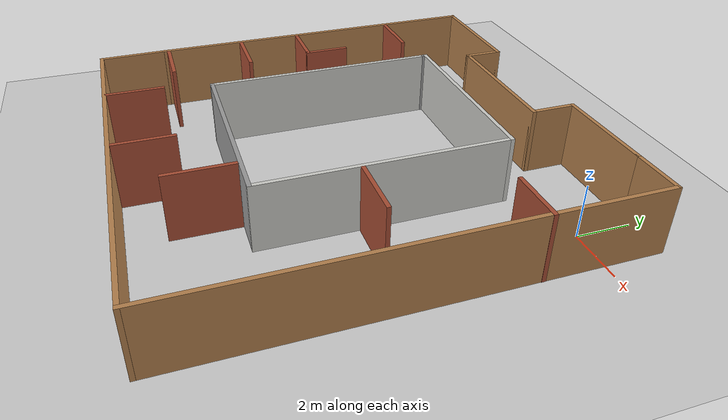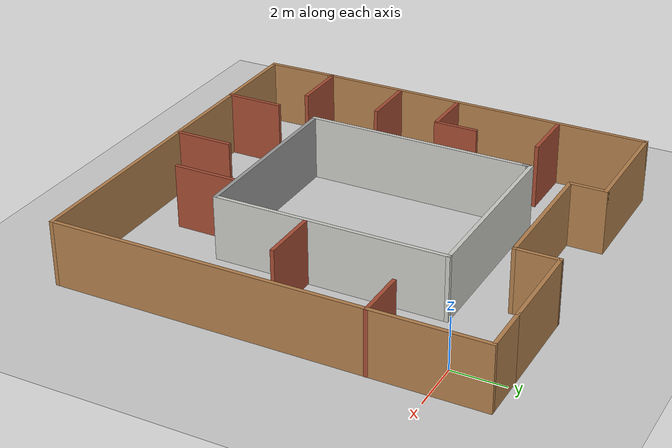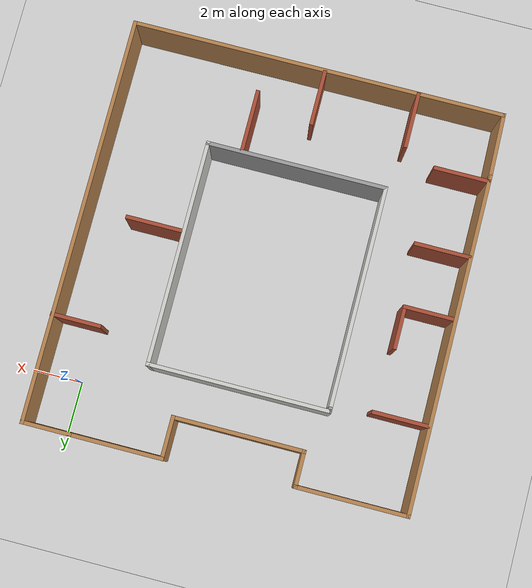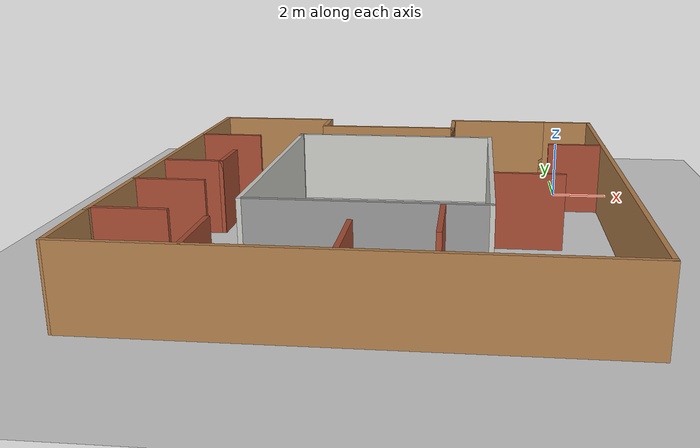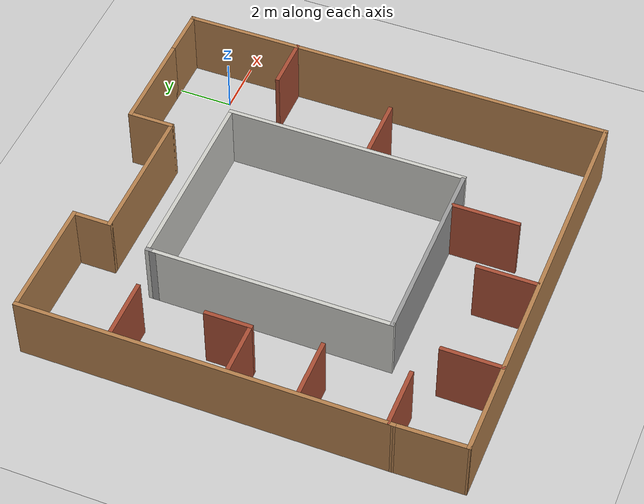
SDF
<sdf version="1.6">
 <world name="default">
  <light name="sun" type="directional">
   <pose>0 0 10 0 -0 0</pose>
   <diffuse>0.8 0.8 0.8 1</diffuse>
   <specular>0.2 0.2 0.2 1</specular>
   <attenuation>
    <range>1000</range>
    <constant>0.9</constant>
    <linear>0.01</linear>
    <quadratic>0.001</quadratic>
   </attenuation>
   <direction>-0.5 0.1 -0.9</direction>
  </light>
  <model name="ground_plane">
   <static>1</static>
   <link name="link">
    <collision name="collision">
     <geometry><plane><normal>0 0 1</normal><size>100 100</size></plane></geometry>
     <surface>
      <contact><collide_bitmask>65535</collide_bitmask></contact>
      <friction><ode><mu>100</mu><mu2>50</mu2></ode></friction>
     </surface>
    </collision>
    <visual name="visual">
     <cast_shadows>0</cast_shadows>
     <geometry><plane><normal>0 0 1</normal><size>100 100</size></plane></geometry>
     <material>
      <script><uri>file://media/materials/scripts/gazebo.material</uri><name>Gazebo/Grey</name></script>
     </material>
    </visual>
   </link>
  </model>
  <gravity>0 0 -9.8</gravity>
  <magnetic_field>6e-06 2.3e-05 -4.2e-05</magnetic_field>
  <atmosphere type="adiabatic"/>
  <physics name="default_physics" default="0" type="ode">
   <max_step_size>0.001</max_step_size>
   <real_time_factor>1</real_time_factor>
   <real_time_update_rate>1000</real_time_update_rate>
  </physics>
  <scene><ambient>0.4 0.4 0.4 1</ambient><background>0.7 0.7 0.7 1</background><shadows>1</shadows></scene>
  <spherical_coordinates>
   <surface_model>EARTH_WGS84</surface_model>
   <latitude_deg>0</latitude_deg>
   <longitude_deg>0</longitude_deg>
   <elevation>0</elevation>
   <heading_deg>0</heading_deg>
  </spherical_coordinates>
  <model name="BuildingA">
   <pose>-6 -6 0 0 -0 0</pose>
   <link name="Wall_36">
    <collision name="Wall_36_Collision">
     <geometry><box><size>8.75 0.15 2.5</size></box></geometry>
     <pose>0 0 1.25 0 -0 0</pose>
    </collision>
    <visual name="Wall_36_Visual">
     <pose>0 0 1.25 0 -0 0</pose>
     <geometry><box><size>8.75 0.15 2.5</size></box></geometry>
     <material>
      <script><uri>file://media/materials/scripts/gazebo.material</uri><name>Gazebo/CeilingTiled</name></script>
      <ambient>1 1 1 1</ambient>
     </material>
     <meta><layer>0</layer></meta>
    </visual>
    <pose>-3.663 0.207205 0 0 0 -1.5708</pose>
   </link>
   <link name="Wall_37">
    <collision name="Wall_37_Collision">
     <geometry><box><size>7.25 0.15 2.5</size></box></geometry>
     <pose>0 0 1.25 0 -0 0</pose>
    </collision>
    <visual name="Wall_37_Visual">
     <pose>0 0 1.25 0 -0 0</pose>
     <geometry><box><size>7.25 0.15 2.5</size></box></geometry>
     <material>
      <script><uri>file://media/materials/scripts/gazebo.material</uri><name>Gazebo/Grey</name></script>
      <ambient>1 1 1 1</ambient>
     </material>
     <meta><layer>0</layer></meta>
    </visual>
    <pose>-0.113004 -4.09279 0 0 -0 0</pose>
   </link>
   <link name="Wall_38">
    <collision name="Wall_38_Collision">
     <geometry><box><size>9 0.15 2.5</size></box></geometry>
     <pose>0 0 1.25 0 -0 0</pose>
    </collision>
    <visual name="Wall_38_Visual">
     <pose>0 0 1.25 0 -0 0</pose>
     <geometry><box><size>9 0.15 2.5</size></box></geometry>
     <material>
      <script><uri>file://media/materials/scripts/gazebo.material</uri><name>Gazebo/CeilingTiled</name></script>
      <ambient>1 1 1 1</ambient>
     </material>
     <meta><layer>0</layer></meta>
    </visual>
    <pose>3.437 0.332205 0 0 -0 1.5708</pose>
   </link>
   <link name="Wall_39">
    <collision name="Wall_39_Collision">
     <geometry><box><size>7.25 0.15 2.5</size></box></geometry>
     <pose>0 0 1.25 0 -0 0</pose>
    </collision>
    <visual name="Wall_39_Visual">
     <pose>0 0 1.25 0 -0 0</pose>
     <geometry><box><size>7.25 0.15 2.5</size></box></geometry>
     <material>
      <script><uri>file://media/materials/scripts/gazebo.material</uri><name>Gazebo/CeilingTiled</name></script>
      <ambient>1 1 1 1</ambient>
     </material>
     <meta><layer>0</layer></meta>
    </visual>
    <pose>-0.113004 4.7572 0 0 -0 3.14159</pose>
   </link>
   <link name="Wall_40">
    <collision name="Wall_40_Collision">
     <geometry><box><size>0.15 0.15 2.5</size></box></geometry>
     <pose>0 0 1.25 0 -0 0</pose>
    </collision>
    <visual name="Wall_40_Visual">
     <pose>0 0 1.25 0 -0 0</pose>
     <geometry><box><size>0.15 0.15 2.5</size></box></geometry>
     <material>
      <script><uri>file://media/materials/scripts/gazebo.material</uri><name>Gazebo/Grey</name></script>
      <ambient>1 1 1 1</ambient>
     </material>
     <meta><layer>0</layer></meta>
    </visual>
    <pose>-3.663 4.7572 0 0 -0 0</pose>
   </link>
   <link name="Wall_41">
    <collision name="Wall_41_Collision">
     <geometry><box><size>0.4 0.15 2.5</size></box></geometry>
     <pose>0 0 1.25 0 -0 0</pose>
    </collision>
    <visual name="Wall_41_Visual">
     <pose>0 0 1.25 0 -0 0</pose>
     <geometry><box><size>0.4 0.15 2.5</size></box></geometry>
     <material>
      <script><uri>file://media/materials/scripts/gazebo.material</uri><name>Gazebo/Grey</name></script>
      <ambient>1 1 1 1</ambient>
     </material>
     <meta><layer>0</layer></meta>
    </visual>
    <pose>-3.663 4.6322 0 0 0 -1.5708</pose>
   </link>
   <link name="Wall_44">
    <collision name="Wall_44_Collision">
     <geometry><box><size>13.5 0.15 2.5</size></box></geometry>
     <pose>0 0 1.25 0 -0 0</pose>
    </collision>
    <visual name="Wall_44_Visual">
     <pose>0 0 1.25 0 -0 0</pose>
     <geometry><box><size>13.5 0.15 2.5</size></box></geometry>
     <material>
      <script><uri>file://media/materials/scripts/gazebo.material</uri><name>Gazebo/Wood</name></script>
      <ambient>1 1 1 1</ambient>
     </material>
     <meta><layer>0</layer></meta>
    </visual>
    <pose>-7.45479 1.12574 0 0 -0 1.5708</pose>
   </link>
   <link name="Wall_45">
    <collision name="Wall_45_Collision">
     <geometry><box><size>4.5 0.15 2.5</size></box></geometry>
     <pose>0 0 1.25 0 -0 0</pose>
    </collision>
    <visual name="Wall_45_Visual">
     <pose>0 0 1.25 0 -0 0</pose>
     <geometry><box><size>4.5 0.15 2.5</size></box></geometry>
     <material>
      <script><uri>file://media/materials/scripts/gazebo.material</uri><name>Gazebo/Wood</name></script>
      <ambient>1 1 1 1</ambient>
     </material>
     <meta><layer>0</layer></meta>
    </visual>
    <pose>-5.27979 7.80074 0 0 -0 0</pose>
   </link>
   <link name="Wall_46">
    <collision name="Wall_46_Collision">
     <geometry><box><size>1.5 0.15 2.5</size></box></geometry>
     <pose>0 0 1.25 0 -0 0</pose>
    </collision>
    <visual name="Wall_46_Visual">
     <pose>0 0 1.25 0 -0 0</pose>
     <geometry><box><size>1.5 0.15 2.5</size></box></geometry>
     <material>
      <script><uri>file://media/materials/scripts/gazebo.material</uri><name>Gazebo/Wood</name></script>
      <ambient>1 1 1 1</ambient>
     </material>
     <meta><layer>0</layer></meta>
    </visual>
    <pose>-3.10479 7.12574 0 0 0 -1.5708</pose>
   </link>
   <link name="Wall_47">
    <collision name="Wall_47_Collision">
     <geometry><box><size>5.25 0.15 2.5</size></box></geometry>
     <pose>0 0 1.25 0 -0 0</pose>
    </collision>
    <visual name="Wall_47_Visual">
     <pose>0 0 1.25 0 -0 0</pose>
     <geometry><box><size>5.25 0.15 2.5</size></box></geometry>
     <material>
      <script><uri>file://media/materials/scripts/gazebo.material</uri><name>Gazebo/Wood</name></script>
      <ambient>1 1 1 1</ambient>
     </material>
     <meta><layer>0</layer></meta>
    </visual>
    <pose>-0.554785 6.45074 0 0 -0 0</pose>
   </link>
   <link name="Wall_48">
    <collision name="Wall_48_Collision">
     <geometry><box><size>1.75 0.15 2.5</size></box></geometry>
     <pose>0 0 1.25 0 -0 0</pose>
    </collision>
    <visual name="Wall_48_Visual">
     <pose>0 0 1.25 0 -0 0</pose>
     <geometry><box><size>1.75 0.15 2.5</size></box></geometry>
     <material>
      <script><uri>file://media/materials/scripts/gazebo.material</uri><name>Gazebo/Wood</name></script>
      <ambient>1 1 1 1</ambient>
     </material>
     <meta><layer>0</layer></meta>
    </visual>
    <pose>1.99521 7.25074 0 0 -0 1.5708</pose>
   </link>
   <link name="Wall_49">
    <collision name="Wall_49_Collision">
     <geometry><box><size>3.75 0.15 2.5</size></box></geometry>
     <pose>0 0 1.25 0 -0 0</pose>
    </collision>
    <visual name="Wall_49_Visual">
     <pose>0 0 1.25 0 -0 0</pose>
     <geometry><box><size>3.75 0.15 2.5</size></box></geometry>
     <material>
      <script><uri>file://media/materials/scripts/gazebo.material</uri><name>Gazebo/Wood</name></script>
      <ambient>1 1 1 1</ambient>
     </material>
     <meta><layer>0</layer></meta>
    </visual>
    <pose>3.79521 8.05074 0 0 -0 0</pose>
   </link>
   <link name="Wall_50">
    <collision name="Wall_50_Collision">
     <geometry><box><size>2 0.15 2.5</size></box></geometry>
     <pose>0 0 1.25 0 -0 0</pose>
    </collision>
    <visual name="Wall_50_Visual">
     <pose>0 0 1.25 0 -0 0</pose>
     <geometry><box><size>2 0.15 2.5</size></box></geometry>
     <material>
      <script><uri>file://media/materials/scripts/gazebo.material</uri><name>Gazebo/Wood</name></script>
      <ambient>1 1 1 1</ambient>
     </material>
     <meta><layer>0</layer></meta>
    </visual>
    <pose>6.52021 8.05074 0 0 -0 0</pose>
   </link>
   <link name="Wall_51">
    <collision name="Wall_51_Collision">
     <geometry><box><size>16.25 0.15 2.5</size></box></geometry>
     <pose>0 0 1.25 0 -0 0</pose>
    </collision>
    <visual name="Wall_51_Visual">
     <pose>0 0 1.25 0 -0 0</pose>
     <geometry><box><size>16.25 0.15 2.5</size></box></geometry>
     <material>
      <script><uri>file://media/materials/scripts/gazebo.material</uri><name>Gazebo/Wood</name></script>
      <ambient>1 1 1 1</ambient>
     </material>
     <meta><layer>0</layer></meta>
    </visual>
    <pose>7.44522 0.000742 0 0 0 -1.5708</pose>
   </link>
   <link name="Wall_52">
    <collision name="Wall_52_Collision">
     <geometry><box><size>15 0.15 2.5</size></box></geometry>
     <pose>0 0 1.25 0 -0 0</pose>
    </collision>
    <visual name="Wall_52_Visual">
     <pose>0 0 1.25 0 -0 0</pose>
     <geometry><box><size>15 0.15 2.5</size></box></geometry>
     <material>
      <script><uri>file://media/materials/scripts/gazebo.material</uri><name>Gazebo/Wood</name></script>
      <ambient>1 1 1 1</ambient>
     </material>
     <meta><layer>0</layer></meta>
    </visual>
    <pose>0.020215 -8.04926 0 0 -0 3.14159</pose>
   </link>
   <link name="Wall_53">
    <collision name="Wall_53_Collision">
     <geometry><box><size>2.6505 0.15 2.5</size></box></geometry>
     <pose>0 0 1.25 0 -0 0</pose>
    </collision>
    <visual name="Wall_53_Visual">
     <pose>0 0 1.25 0 -0 0</pose>
     <geometry><box><size>2.6505 0.15 2.5</size></box></geometry>
     <material>
      <script><uri>file://media/materials/scripts/gazebo.material</uri><name>Gazebo/Wood</name></script>
      <ambient>1 1 1 1</ambient>
     </material>
     <meta><layer>0</layer></meta>
    </visual>
    <pose>-7.42979 -6.79926 0 0 -0 1.59079</pose>
   </link>
   <link name="Wall_55">
    <collision name="Wall_55_Collision">
     <geometry><box><size>2.25 0.15 2.5</size></box></geometry>
     <pose>0 0 1.25 0 -0 0</pose>
    </collision>
    <visual name="Wall_55_Visual">
     <pose>0 0 1.25 0 -0 0</pose>
     <geometry><box><size>2.25 0.15 2.5</size></box></geometry>
     <material>
      <script><uri>file://media/materials/scripts/gazebo.material</uri><name>Gazebo/Bricks</name></script>
      <ambient>1 1 1 1</ambient>
     </material>
     <meta><layer>0</layer></meta>
    </visual>
    <pose>-6.32235 4.36982 0 0 -0 0</pose>
   </link>
   <link name="Wall_57">
    <collision name="Wall_57_Collision">
     <geometry><box><size>2 0.15 2.5</size></box></geometry>
     <pose>0 0 1.25 0 -0 0</pose>
    </collision>
    <visual name="Wall_57_Visual">
     <pose>0 0 1.25 0 -0 0</pose>
     <geometry><box><size>2 0.15 2.5</size></box></geometry>
     <material>
      <script><uri>file://media/materials/scripts/gazebo.material</uri><name>Gazebo/Bricks</name></script>
      <ambient>1 1 1 1</ambient>
     </material>
     <meta><layer>0</layer></meta>
    </visual>
    <pose>-6.3924 0.193367 0 0 -0 0</pose>
   </link>
   <link name="Wall_58">
    <collision name="Wall_58_Collision">
     <geometry><box><size>1.75 0.15 2.5</size></box></geometry>
     <pose>0 0 1.25 0 -0 0</pose>
    </collision>
    <visual name="Wall_58_Visual">
     <pose>0 0 1.25 0 -0 0</pose>
     <geometry><box><size>1.75 0.15 2.5</size></box></geometry>
     <material>
      <script><uri>file://media/materials/scripts/gazebo.material</uri><name>Gazebo/Bricks</name></script>
      <ambient>1 1 1 1</ambient>
     </material>
     <meta><layer>0</layer></meta>
    </visual>
    <pose>-5.4674 0.993367 0 0 -0 1.5708</pose>
   </link>
   <link name="Wall_60">
    <collision name="Wall_60_Collision">
     <geometry><box><size>2.25 0.15 2.5</size></box></geometry>
     <pose>0 0 1.25 0 -0 0</pose>
    </collision>
    <visual name="Wall_60_Visual">
     <pose>0 0 1.25 0 -0 0</pose>
     <geometry><box><size>2.25 0.15 2.5</size></box></geometry>
     <material>
      <script><uri>file://media/materials/scripts/gazebo.material</uri><name>Gazebo/Bricks</name></script>
      <ambient>1 1 1 1</ambient>
     </material>
     <meta><layer>0</layer></meta>
    </visual>
    <pose>-6.34983 -2.27953 0 0 -0 0</pose>
   </link>
   <link name="Wall_62">
    <collision name="Wall_62_Collision">
     <geometry><box><size>2.25 0.15 2.5</size></box></geometry>
     <pose>0 0 1.25 0 -0 0</pose>
    </collision>
    <visual name="Wall_62_Visual">
     <pose>0 0 1.25 0 -0 0</pose>
     <geometry><box><size>2.25 0.15 2.5</size></box></geometry>
     <material>
      <script><uri>file://media/materials/scripts/gazebo.material</uri><name>Gazebo/Bricks</name></script>
      <ambient>1 1 1 1</ambient>
     </material>
     <meta><layer>0</layer></meta>
    </visual>
    <pose>-6.37768 -5.35015 0 0 -0 0</pose>
   </link>
   <link name="Wall_64">
    <collision name="Wall_64_Collision">
     <geometry><box><size>2.25 0.15 2.5</size></box></geometry>
     <pose>0 0 1.25 0 -0 0</pose>
    </collision>
    <visual name="Wall_64_Visual">
     <pose>0 0 1.25 0 -0 0</pose>
     <geometry><box><size>2.25 0.15 2.5</size></box></geometry>
     <material>
      <script><uri>file://media/materials/scripts/gazebo.material</uri><name>Gazebo/Bricks</name></script>
      <ambient>1 1 1 1</ambient>
     </material>
     <meta><layer>0</layer></meta>
    </visual>
    <pose>-4.00985 -6.97139 0 0 -0 1.5708</pose>
   </link>
   <link name="Wall_66">
    <collision name="Wall_66_Collision">
     <geometry><box><size>2.25 0.15 2.5</size></box></geometry>
     <pose>0 0 1.25 0 -0 0</pose>
    </collision>
    <visual name="Wall_66_Visual">
     <pose>0 0 1.25 0 -0 0</pose>
     <geometry><box><size>2.25 0.15 2.5</size></box></geometry>
     <material>
      <script><uri>file://media/materials/scripts/gazebo.material</uri><name>Gazebo/Bricks</name></script>
      <ambient>1 1 1 1</ambient>
     </material>
     <meta><layer>0</layer></meta>
    </visual>
    <pose>-0.252044 -6.92322 0 0 -0 1.5708</pose>
   </link>
   <link name="Wall_68">
    <collision name="Wall_68_Collision">
     <geometry><box><size>2.5 0.15 2.5</size></box></geometry>
     <pose>0 0 1.25 0 -0 0</pose>
    </collision>
    <visual name="Wall_68_Visual">
     <pose>0 0 1.25 0 -0 0</pose>
     <geometry><box><size>2.5 0.15 2.5</size></box></geometry>
     <material>
      <script><uri>file://media/materials/scripts/gazebo.material</uri><name>Gazebo/Bricks</name></script>
      <ambient>1 1 1 1</ambient>
     </material>
     <meta><layer>0</layer></meta>
    </visual>
    <pose>2.08454 -5.36633 0 0 0 -1.5708</pose>
   </link>
   <link name="Wall_71">
    <collision name="Wall_71_Collision">
     <geometry><box><size>2.25 0.15 2.5</size></box></geometry>
     <pose>0 0 1.25 0 -0 0</pose>
    </collision>
    <visual name="Wall_71_Visual">
     <pose>0 0 1.25 0 -0 0</pose>
     <geometry><box><size>2.25 0.15 2.5</size></box></geometry>
     <material>
      <script><uri>file://media/materials/scripts/gazebo.material</uri><name>Gazebo/Bricks</name></script>
      <ambient>1 1 1 1</ambient>
     </material>
     <meta><layer>0</layer></meta>
    </visual>
    <pose>4.62803 -0.505788 0 0 -0 0</pose>
   </link>
   <link name="Wall_73">
    <collision name="Wall_73_Collision">
     <geometry><box><size>2 0.15 2.5</size></box></geometry>
     <pose>0 0 1.25 0 -0 0</pose>
    </collision>
    <visual name="Wall_73_Visual">
     <pose>0 0 1.25 0 -0 0</pose>
     <geometry><box><size>2 0.15 2.5</size></box></geometry>
     <material>
      <script><uri>file://media/materials/scripts/gazebo.material</uri><name>Gazebo/Bricks</name></script>
      <ambient>1 1 1 1</ambient>
     </material>
     <meta><layer>0</layer></meta>
    </visual>
    <pose>6.53127 3.83014 0 0 -0 3.14159</pose>
   </link>
   <static>1</static>
  </model>
 </world>
</sdf>
